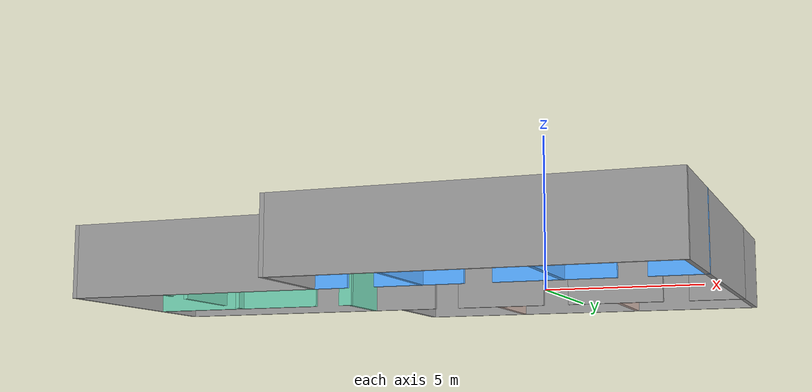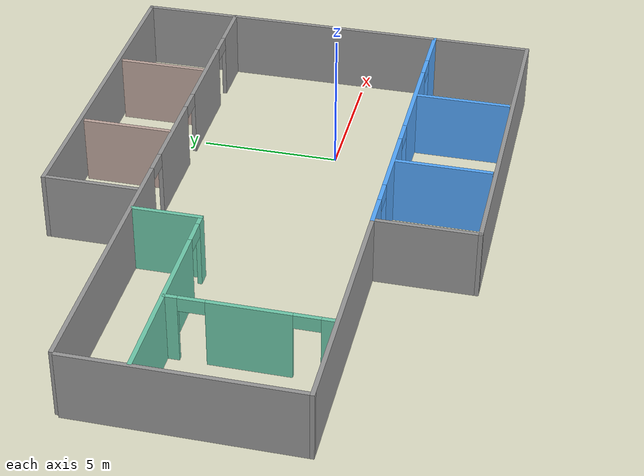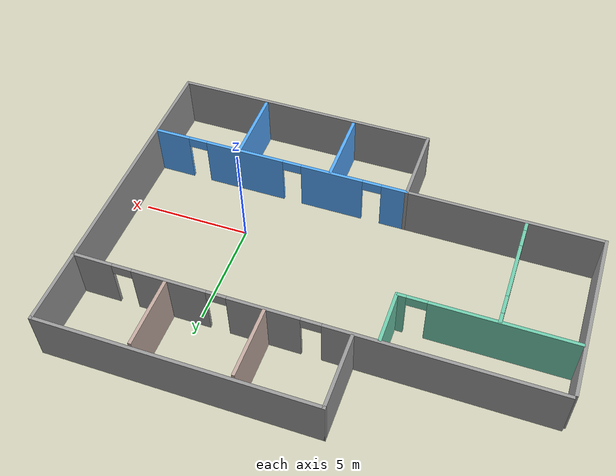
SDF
<?xml version='1.0'?>
<sdf version='1.6'>
  <model name='Building'>
    <pose frame=''>-5.09713 1.21876 0 0 -0 0</pose>
    <link name='Wall_0'>
      <pose frame=''>0.05 4.06916 0 0 -0 0</pose>
      <visual name='Wall_0_Visual_0'>
        <pose frame=''>-5.59523 0 1.25 0 -0 0</pose>
        <geometry>
          <box>
            <size>10.0595 0.15 2.5</size>
          </box>
        </geometry>
        <material>
          <script>
            <uri>file://media/materials/scripts/gazebo.material</uri>
            <name>Gazebo/Grey</name>
          </script>
          <ambient>1 1 1 1</ambient>
        </material>
        <meta>
          <layer>0</layer>
        </meta>
      </visual>
      <collision name='Wall_0_Collision_0'>
        <geometry>
          <box>
            <size>10.0595 0.15 2.5</size>
          </box>
        </geometry>
        <pose frame=''>-5.59523 0 1.25 0 -0 0</pose>
      </collision>
      <visual name='Wall_0_Visual_1'>
        <pose frame=''>1.94439 0 1.25 0 -0 0</pose>
        <geometry>
          <box>
            <size>3.21969 0.15 2.5</size>
          </box>
        </geometry>
        <material>
          <script>
            <uri>file://media/materials/scripts/gazebo.material</uri>
            <name>Gazebo/Grey</name>
          </script>
          <ambient>1 1 1 1</ambient>
        </material>
        <meta>
          <layer>0</layer>
        </meta>
      </visual>
      <collision name='Wall_0_Collision_1'>
        <geometry>
          <box>
            <size>3.21969 0.15 2.5</size>
          </box>
        </geometry>
        <pose frame=''>1.94439 0 1.25 0 -0 0</pose>
      </collision>
      <visual name='Wall_0_Visual_2'>
        <pose frame=''>6.14433 0 1.25 0 -0 0</pose>
        <geometry>
          <box>
            <size>3.3802 0.15 2.5</size>
          </box>
        </geometry>
        <material>
          <script>
            <uri>file://media/materials/scripts/gazebo.material</uri>
            <name>Gazebo/Grey</name>
          </script>
          <ambient>1 1 1 1</ambient>
        </material>
        <meta>
          <layer>0</layer>
        </meta>
      </visual>
      <collision name='Wall_0_Collision_2'>
        <geometry>
          <box>
            <size>3.3802 0.15 2.5</size>
          </box>
        </geometry>
        <pose frame=''>6.14433 0 1.25 0 -0 0</pose>
      </collision>
      <visual name='Wall_0_Visual_3'>
        <pose frame=''>9.67972 0 1.25 0 -0 0</pose>
        <geometry>
          <box>
            <size>1.89057 0.15 2.5</size>
          </box>
        </geometry>
        <material>
          <script>
            <uri>file://media/materials/scripts/gazebo.material</uri>
            <name>Gazebo/Grey</name>
          </script>
          <ambient>1 1 1 1</ambient>
        </material>
        <meta>
          <layer>0</layer>
        </meta>
      </visual>
      <collision name='Wall_0_Collision_3'>
        <geometry>
          <box>
            <size>1.89057 0.15 2.5</size>
          </box>
        </geometry>
        <pose frame=''>9.67972 0 1.25 0 -0 0</pose>
      </collision>
      <visual name='Wall_0_Visual_4'>
        <pose frame=''>-0.11546 0 2.25 0 -0 0</pose>
        <geometry>
          <box>
            <size>0.9 0.15 0.5</size>
          </box>
        </geometry>
        <material>
          <script>
            <uri>file://media/materials/scripts/gazebo.material</uri>
            <name>Gazebo/Grey</name>
          </script>
          <ambient>1 1 1 1</ambient>
        </material>
        <meta>
          <layer>0</layer>
        </meta>
      </visual>
      <collision name='Wall_0_Collision_4'>
        <geometry>
          <box>
            <size>0.9 0.15 0.5</size>
          </box>
        </geometry>
        <pose frame=''>-0.11546 0 2.25 0 -0 0</pose>
      </collision>
      <visual name='Wall_0_Visual_5'>
        <pose frame=''>4.00423 0 2.25 0 -0 0</pose>
        <geometry>
          <box>
            <size>0.9 0.15 0.5</size>
          </box>
        </geometry>
        <material>
          <script>
            <uri>file://media/materials/scripts/gazebo.material</uri>
            <name>Gazebo/Grey</name>
          </script>
          <ambient>1 1 1 1</ambient>
        </material>
        <meta>
          <layer>0</layer>
        </meta>
      </visual>
      <collision name='Wall_0_Collision_5'>
        <geometry>
          <box>
            <size>0.9 0.15 0.5</size>
          </box>
        </geometry>
        <pose frame=''>4.00423 0 2.25 0 -0 0</pose>
      </collision>
      <visual name='Wall_0_Visual_6'>
        <pose frame=''>8.28443 0 2.25 0 -0 0</pose>
        <geometry>
          <box>
            <size>0.9 0.15 0.5</size>
          </box>
        </geometry>
        <material>
          <script>
            <uri>file://media/materials/scripts/gazebo.material</uri>
            <name>Gazebo/Grey</name>
          </script>
          <ambient>1 1 1 1</ambient>
        </material>
        <meta>
          <layer>0</layer>
        </meta>
      </visual>
      <collision name='Wall_0_Collision_6'>
        <geometry>
          <box>
            <size>0.9 0.15 0.5</size>
          </box>
        </geometry>
        <pose frame=''>8.28443 0 2.25 0 -0 0</pose>
      </collision>
    </link>
    <link name='Wall_1'>
      <collision name='Wall_1_Collision'>
        <geometry>
          <box>
            <size>11.75 0.15 2.5</size>
          </box>
        </geometry>
        <pose frame=''>0 0 1.25 0 -0 0</pose>
      </collision>
      <visual name='Wall_1_Visual'>
        <pose frame=''>0 0 1.25 0 -0 0</pose>
        <geometry>
          <box>
            <size>11.75 0.15 2.5</size>
          </box>
        </geometry>
        <material>
          <script>
            <uri>file://media/materials/scripts/gazebo.material</uri>
            <name>Gazebo/Grey</name>
          </script>
          <ambient>1 1 1 1</ambient>
        </material>
        <meta>
          <layer>0</layer>
        </meta>
      </visual>
      <pose frame=''>10.6 -1.73084 0 0 0 -1.5708</pose>
    </link>
    <link name='Wall_11'>
      <collision name='Wall_11_Collision'>
        <geometry>
          <box>
            <size>3.5 0.15 2.5</size>
          </box>
        </geometry>
        <pose frame=''>0 0 1.25 0 -0 0</pose>
      </collision>
      <visual name='Wall_11_Visual'>
        <pose frame=''>0 0 1.25 0 -0 0</pose>
        <geometry>
          <box>
            <size>3.5 0.15 2.5</size>
          </box>
        </geometry>
        <material>
          <script>
            <uri>file://media/materials/scripts/gazebo.material</uri>
            <name>Gazebo/Grey</name>
          </script>
          <ambient>0.333333 0.666667 1 1</ambient>
        </material>
        <meta>
          <layer>0</layer>
        </meta>
      </visual>
      <pose frame=''>6.35522 -5.68166 0 0 0 -1.5708</pose>
    </link>
    <link name='Wall_13'>
      <collision name='Wall_13_Collision'>
        <geometry>
          <box>
            <size>3.5 0.15 2.5</size>
          </box>
        </geometry>
        <pose frame=''>0 0 1.25 0 -0 0</pose>
      </collision>
      <visual name='Wall_13_Visual'>
        <pose frame=''>0 0 1.25 0 -0 0</pose>
        <geometry>
          <box>
            <size>3.5 0.15 2.5</size>
          </box>
        </geometry>
        <material>
          <script>
            <uri>file://media/materials/scripts/gazebo.material</uri>
            <name>Gazebo/Grey</name>
          </script>
          <ambient>1 1 1 1</ambient>
        </material>
        <meta>
          <layer>0</layer>
        </meta>
      </visual>
      <pose frame=''>-1.8205 5.85585 0 0 -0 1.5708</pose>
    </link>
    <link name='Wall_14'>
      <collision name='Wall_14_Collision'>
        <geometry>
          <box>
            <size>12.5612 0.15 2.5</size>
          </box>
        </geometry>
        <pose frame=''>0 0 1.25 0 -0 0</pose>
      </collision>
      <visual name='Wall_14_Visual'>
        <pose frame=''>0 0 1.25 0 -0 0</pose>
        <geometry>
          <box>
            <size>12.5612 0.15 2.5</size>
          </box>
        </geometry>
        <material>
          <script>
            <uri>file://media/materials/scripts/gazebo.material</uri>
            <name>Gazebo/Grey</name>
          </script>
          <ambient>1 1 1 1</ambient>
        </material>
        <meta>
          <layer>0</layer>
        </meta>
      </visual>
      <pose frame=''>4.38509 7.53085 0 0 -0 0</pose>
    </link>
    <link name='Wall_15'>
      <collision name='Wall_15_Collision'>
        <geometry>
          <box>
            <size>3.5 0.15 2.5</size>
          </box>
        </geometry>
        <pose frame=''>0 0 1.25 0 -0 0</pose>
      </collision>
      <visual name='Wall_15_Visual'>
        <pose frame=''>0 0 1.25 0 -0 0</pose>
        <geometry>
          <box>
            <size>3.5 0.15 2.5</size>
          </box>
        </geometry>
        <material>
          <script>
            <uri>file://media/materials/scripts/gazebo.material</uri>
            <name>Gazebo/Grey</name>
          </script>
          <ambient>1 1 1 1</ambient>
        </material>
        <meta>
          <layer>0</layer>
        </meta>
      </visual>
      <pose frame=''>10.5907 5.82526 0 0 0 -1.5708</pose>
    </link>
    <link name='Wall_18'>
      <collision name='Wall_18_Collision'>
        <geometry>
          <box>
            <size>3.25 0.15 2.5</size>
          </box>
        </geometry>
        <pose frame=''>0 0 1.25 0 -0 0</pose>
      </collision>
      <visual name='Wall_18_Visual'>
        <pose frame=''>0 0 1.25 0 -0 0</pose>
        <geometry>
          <box>
            <size>3.25 0.15 2.5</size>
          </box>
        </geometry>
        <material>
          <script>
            <uri>file://media/materials/scripts/gazebo.material</uri>
            <name>Gazebo/Grey</name>
          </script>
          <ambient>0.760784 0.662745 0.627451 1</ambient>
        </material>
        <meta>
          <layer>0</layer>
        </meta>
      </visual>
      <pose frame=''>1.91413 5.73931 0 0 -0 1.5708</pose>
    </link>
    <link name='Wall_2'>
      <collision name='Wall_2_Collision'>
        <geometry>
          <box>
            <size>12.5 0.15 2.5</size>
          </box>
        </geometry>
        <pose frame=''>0 0 1.25 0 -0 0</pose>
      </collision>
      <visual name='Wall_2_Visual'>
        <pose frame=''>0 0 1.25 0 -0 0</pose>
        <geometry>
          <box>
            <size>12.5 0.15 2.5</size>
          </box>
        </geometry>
        <material>
          <script>
            <uri>file://media/materials/scripts/gazebo.material</uri>
            <name>Gazebo/Grey</name>
          </script>
          <ambient>1 1 1 1</ambient>
        </material>
        <meta>
          <layer>0</layer>
        </meta>
      </visual>
      <pose frame=''>4.425 -7.53085 0 0 -0 3.14159</pose>
    </link>
    <link name='Wall_20'>
      <collision name='Wall_20_Collision'>
        <geometry>
          <box>
            <size>3.25 0.15 2.5</size>
          </box>
        </geometry>
        <pose frame=''>0 0 1.25 0 -0 0</pose>
      </collision>
      <visual name='Wall_20_Visual'>
        <pose frame=''>0 0 1.25 0 -0 0</pose>
        <geometry>
          <box>
            <size>3.25 0.15 2.5</size>
          </box>
        </geometry>
        <material>
          <script>
            <uri>file://media/materials/scripts/gazebo.material</uri>
            <name>Gazebo/Grey</name>
          </script>
          <ambient>0.760784 0.662745 0.627451 1</ambient>
        </material>
        <meta>
          <layer>0</layer>
        </meta>
      </visual>
      <pose frame=''>6.30134 5.73931 0 0 -0 1.5708</pose>
    </link>
    <link name='Wall_22'>
      <collision name='Wall_22_Collision'>
        <geometry>
          <box>
            <size>2.5 0.15 2.5</size>
          </box>
        </geometry>
        <pose frame=''>0 0 1.25 0 -0 0</pose>
      </collision>
      <visual name='Wall_22_Visual'>
        <pose frame=''>0 0 1.25 0 -0 0</pose>
        <geometry>
          <box>
            <size>2.5 0.15 2.5</size>
          </box>
        </geometry>
        <material>
          <script>
            <uri>file://media/materials/scripts/gazebo.material</uri>
            <name>Gazebo/Grey</name>
          </script>
          <ambient>0.435294 0.796078 0.67451 1</ambient>
        </material>
        <meta>
          <layer>0</layer>
        </meta>
      </visual>
      <pose frame=''>-2.90109 2.8003 0 0 0 -1.5708</pose>
    </link>
    <link name='Wall_23'>
      <pose frame=''>-6.70109 1.6253 0 0 -0 3.14159</pose>
      <visual name='Wall_23_Visual_0'>
        <pose frame=''>-3.63448 0 1.25 0 -0 0</pose>
        <geometry>
          <box>
            <size>0.48104 0.15 2.5</size>
          </box>
        </geometry>
        <material>
          <script>
            <uri>file://media/materials/scripts/gazebo.material</uri>
            <name>Gazebo/Grey</name>
          </script>
          <ambient>0.435294 0.796078 0.67451 1</ambient>
        </material>
        <meta>
          <layer>0</layer>
        </meta>
      </visual>
      <collision name='Wall_23_Collision_0'>
        <geometry>
          <box>
            <size>0.48104 0.15 2.5</size>
          </box>
        </geometry>
        <pose frame=''>-3.63448 0 1.25 0 -0 0</pose>
      </collision>
      <visual name='Wall_23_Visual_1'>
        <pose frame=''>0.69052 0 1.25 0 -0 0</pose>
        <geometry>
          <box>
            <size>6.36896 0.15 2.5</size>
          </box>
        </geometry>
        <material>
          <script>
            <uri>file://media/materials/scripts/gazebo.material</uri>
            <name>Gazebo/Grey</name>
          </script>
          <ambient>0.435294 0.796078 0.67451 1</ambient>
        </material>
        <meta>
          <layer>0</layer>
        </meta>
      </visual>
      <collision name='Wall_23_Collision_1'>
        <geometry>
          <box>
            <size>6.36896 0.15 2.5</size>
          </box>
        </geometry>
        <pose frame=''>0.69052 0 1.25 0 -0 0</pose>
      </collision>
      <visual name='Wall_23_Visual_2'>
        <pose frame=''>-2.94396 0 2.25 0 -0 0</pose>
        <geometry>
          <box>
            <size>0.9 0.15 0.5</size>
          </box>
        </geometry>
        <material>
          <script>
            <uri>file://media/materials/scripts/gazebo.material</uri>
            <name>Gazebo/Grey</name>
          </script>
          <ambient>0.435294 0.796078 0.67451 1</ambient>
        </material>
        <meta>
          <layer>0</layer>
        </meta>
      </visual>
      <collision name='Wall_23_Collision_2'>
        <geometry>
          <box>
            <size>0.9 0.15 0.5</size>
          </box>
        </geometry>
        <pose frame=''>-2.94396 0 2.25 0 -0 0</pose>
      </collision>
    </link>
    <link name='Wall_25'>
      <pose frame=''>-7.18129 -1.10732 0 0 0 -1.5708</pose>
      <visual name='Wall_25_Visual_0'>
        <pose frame=''>-2.50948 0 1.25 0 -0 0</pose>
        <geometry>
          <box>
            <size>0.48104 0.15 2.5</size>
          </box>
        </geometry>
        <material>
          <script>
            <uri>file://media/materials/scripts/gazebo.material</uri>
            <name>Gazebo/Grey</name>
          </script>
          <ambient>0.435294 0.796078 0.67451 1</ambient>
        </material>
        <meta>
          <layer>0</layer>
        </meta>
      </visual>
      <collision name='Wall_25_Collision_0'>
        <geometry>
          <box>
            <size>0.48104 0.15 2.5</size>
          </box>
        </geometry>
        <pose frame=''>-2.50948 0 1.25 0 -0 0</pose>
      </collision>
      <visual name='Wall_25_Visual_1'>
        <pose frame=''>0.026876 0 1.25 0 -0 0</pose>
        <geometry>
          <box>
            <size>2.79167 0.15 2.5</size>
          </box>
        </geometry>
        <material>
          <script>
            <uri>file://media/materials/scripts/gazebo.material</uri>
            <name>Gazebo/Grey</name>
          </script>
          <ambient>0.435294 0.796078 0.67451 1</ambient>
        </material>
        <meta>
          <layer>0</layer>
        </meta>
      </visual>
      <collision name='Wall_25_Collision_1'>
        <geometry>
          <box>
            <size>2.79167 0.15 2.5</size>
          </box>
        </geometry>
        <pose frame=''>0.026876 0 1.25 0 -0 0</pose>
      </collision>
      <visual name='Wall_25_Visual_2'>
        <pose frame=''>2.53636 0 1.25 0 -0 0</pose>
        <geometry>
          <box>
            <size>0.427287 0.15 2.5</size>
          </box>
        </geometry>
        <material>
          <script>
            <uri>file://media/materials/scripts/gazebo.material</uri>
            <name>Gazebo/Grey</name>
          </script>
          <ambient>0.435294 0.796078 0.67451 1</ambient>
        </material>
        <meta>
          <layer>0</layer>
        </meta>
      </visual>
      <collision name='Wall_25_Collision_2'>
        <geometry>
          <box>
            <size>0.427287 0.15 2.5</size>
          </box>
        </geometry>
        <pose frame=''>2.53636 0 1.25 0 -0 0</pose>
      </collision>
      <visual name='Wall_25_Visual_3'>
        <pose frame=''>-1.81896 0 2.25 0 -0 0</pose>
        <geometry>
          <box>
            <size>0.9 0.15 0.5</size>
          </box>
        </geometry>
        <material>
          <script>
            <uri>file://media/materials/scripts/gazebo.material</uri>
            <name>Gazebo/Grey</name>
          </script>
          <ambient>0.435294 0.796078 0.67451 1</ambient>
        </material>
        <meta>
          <layer>0</layer>
        </meta>
      </visual>
      <collision name='Wall_25_Collision_3'>
        <geometry>
          <box>
            <size>0.9 0.15 0.5</size>
          </box>
        </geometry>
        <pose frame=''>-1.81896 0 2.25 0 -0 0</pose>
      </collision>
      <visual name='Wall_25_Visual_4'>
        <pose frame=''>1.87271 0 2.25 0 -0 0</pose>
        <geometry>
          <box>
            <size>0.9 0.15 0.5</size>
          </box>
        </geometry>
        <material>
          <script>
            <uri>file://media/materials/scripts/gazebo.material</uri>
            <name>Gazebo/Grey</name>
          </script>
          <ambient>0.435294 0.796078 0.67451 1</ambient>
        </material>
        <meta>
          <layer>0</layer>
        </meta>
      </visual>
      <collision name='Wall_25_Collision_4'>
        <geometry>
          <box>
            <size>0.9 0.15 0.5</size>
          </box>
        </geometry>
        <pose frame=''>1.87271 0 2.25 0 -0 0</pose>
      </collision>
    </link>
    <link name='Wall_3'>
      <collision name='Wall_3_Collision'>
        <geometry>
          <box>
            <size>3.75 0.15 2.5</size>
          </box>
        </geometry>
        <pose frame=''>0 0 1.25 0 -0 0</pose>
      </collision>
      <visual name='Wall_3_Visual'>
        <pose frame=''>0 0 1.25 0 -0 0</pose>
        <geometry>
          <box>
            <size>3.75 0.15 2.5</size>
          </box>
        </geometry>
        <material>
          <script>
            <uri>file://media/materials/scripts/gazebo.material</uri>
            <name>Gazebo/Grey</name>
          </script>
          <ambient>1 1 1 1</ambient>
        </material>
        <meta>
          <layer>0</layer>
        </meta>
      </visual>
      <pose frame=''>-1.75 -5.73084 0 0 -0 1.5708</pose>
    </link>
    <link name='Wall_4'>
      <collision name='Wall_4_Collision'>
        <geometry>
          <box>
            <size>9 0.15 2.5</size>
          </box>
        </geometry>
        <pose frame=''>0 0 1.25 0 -0 0</pose>
      </collision>
      <visual name='Wall_4_Visual'>
        <pose frame=''>0 0 1.25 0 -0 0</pose>
        <geometry>
          <box>
            <size>9 0.15 2.5</size>
          </box>
        </geometry>
        <material>
          <script>
            <uri>file://media/materials/scripts/gazebo.material</uri>
            <name>Gazebo/Grey</name>
          </script>
          <ambient>1 1 1 1</ambient>
        </material>
        <meta>
          <layer>0</layer>
        </meta>
      </visual>
      <pose frame=''>-6.175 -3.93085 0 0 -0 3.14159</pose>
    </link>
    <link name='Wall_5'>
      <collision name='Wall_5_Collision'>
        <geometry>
          <box>
            <size>8 0.15 2.5</size>
          </box>
        </geometry>
        <pose frame=''>0 0 1.25 0 -0 0</pose>
      </collision>
      <visual name='Wall_5_Visual'>
        <pose frame=''>0 0 1.25 0 -0 0</pose>
        <geometry>
          <box>
            <size>8 0.15 2.5</size>
          </box>
        </geometry>
        <material>
          <script>
            <uri>file://media/materials/scripts/gazebo.material</uri>
            <name>Gazebo/Grey</name>
          </script>
          <ambient>1 1 1 1</ambient>
        </material>
        <meta>
          <layer>0</layer>
        </meta>
      </visual>
      <pose frame=''>-10.6 -0.005845 0 0 -0 1.5708</pose>
    </link>
    <link name='Wall_7'>
      <pose frame=''>4.425 -3.93085 0 0 -0 0</pose>
      <visual name='Wall_7_Visual_0'>
        <pose frame=''>-5.62198 0 1.25 0 -0 0</pose>
        <geometry>
          <box>
            <size>1.25604 0.15 2.5</size>
          </box>
        </geometry>
        <material>
          <script>
            <uri>file://media/materials/scripts/gazebo.material</uri>
            <name>Gazebo/Grey</name>
          </script>
          <ambient>0.333333 0.666667 1 1</ambient>
        </material>
        <meta>
          <layer>0</layer>
        </meta>
      </visual>
      <collision name='Wall_7_Collision_0'>
        <geometry>
          <box>
            <size>1.25604 0.15 2.5</size>
          </box>
        </geometry>
        <pose frame=''>-5.62198 0 1.25 0 -0 0</pose>
      </collision>
      <visual name='Wall_7_Visual_1'>
        <pose frame=''>-2.61787 0 1.25 0 -0 0</pose>
        <geometry>
          <box>
            <size>2.95218 0.15 2.5</size>
          </box>
        </geometry>
        <material>
          <script>
            <uri>file://media/materials/scripts/gazebo.material</uri>
            <name>Gazebo/Grey</name>
          </script>
          <ambient>0.333333 0.666667 1 1</ambient>
        </material>
        <meta>
          <layer>0</layer>
        </meta>
      </visual>
      <collision name='Wall_7_Collision_1'>
        <geometry>
          <box>
            <size>2.95218 0.15 2.5</size>
          </box>
        </geometry>
        <pose frame=''>-2.61787 0 1.25 0 -0 0</pose>
      </collision>
      <visual name='Wall_7_Visual_2'>
        <pose frame=''>1.66233 0 1.25 0 -0 0</pose>
        <geometry>
          <box>
            <size>3.80822 0.15 2.5</size>
          </box>
        </geometry>
        <material>
          <script>
            <uri>file://media/materials/scripts/gazebo.material</uri>
            <name>Gazebo/Grey</name>
          </script>
          <ambient>0.333333 0.666667 1 1</ambient>
        </material>
        <meta>
          <layer>0</layer>
        </meta>
      </visual>
      <collision name='Wall_7_Collision_2'>
        <geometry>
          <box>
            <size>3.80822 0.15 2.5</size>
          </box>
        </geometry>
        <pose frame=''>1.66233 0 1.25 0 -0 0</pose>
      </collision>
      <visual name='Wall_7_Visual_3'>
        <pose frame=''>5.35822 0 1.25 0 -0 0</pose>
        <geometry>
          <box>
            <size>1.78356 0.15 2.5</size>
          </box>
        </geometry>
        <material>
          <script>
            <uri>file://media/materials/scripts/gazebo.material</uri>
            <name>Gazebo/Grey</name>
          </script>
          <ambient>0.333333 0.666667 1 1</ambient>
        </material>
        <meta>
          <layer>0</layer>
        </meta>
      </visual>
      <collision name='Wall_7_Collision_3'>
        <geometry>
          <box>
            <size>1.78356 0.15 2.5</size>
          </box>
        </geometry>
        <pose frame=''>5.35822 0 1.25 0 -0 0</pose>
      </collision>
      <visual name='Wall_7_Visual_4'>
        <pose frame=''>-4.54396 0 2.25 0 -0 0</pose>
        <geometry>
          <box>
            <size>0.9 0.15 0.5</size>
          </box>
        </geometry>
        <material>
          <script>
            <uri>file://media/materials/scripts/gazebo.material</uri>
            <name>Gazebo/Grey</name>
          </script>
          <ambient>0.333333 0.666667 1 1</ambient>
        </material>
        <meta>
          <layer>0</layer>
        </meta>
      </visual>
      <collision name='Wall_7_Collision_4'>
        <geometry>
          <box>
            <size>0.9 0.15 0.5</size>
          </box>
        </geometry>
        <pose frame=''>-4.54396 0 2.25 0 -0 0</pose>
      </collision>
      <visual name='Wall_7_Visual_5'>
        <pose frame=''>-0.691783 0 2.25 0 -0 0</pose>
        <geometry>
          <box>
            <size>0.9 0.15 0.5</size>
          </box>
        </geometry>
        <material>
          <script>
            <uri>file://media/materials/scripts/gazebo.material</uri>
            <name>Gazebo/Grey</name>
          </script>
          <ambient>0.333333 0.666667 1 1</ambient>
        </material>
        <meta>
          <layer>0</layer>
        </meta>
      </visual>
      <collision name='Wall_7_Collision_5'>
        <geometry>
          <box>
            <size>0.9 0.15 0.5</size>
          </box>
        </geometry>
        <pose frame=''>-0.691783 0 2.25 0 -0 0</pose>
      </collision>
      <visual name='Wall_7_Visual_6'>
        <pose frame=''>4.01644 0 2.25 0 -0 0</pose>
        <geometry>
          <box>
            <size>0.9 0.15 0.5</size>
          </box>
        </geometry>
        <material>
          <script>
            <uri>file://media/materials/scripts/gazebo.material</uri>
            <name>Gazebo/Grey</name>
          </script>
          <ambient>0.333333 0.666667 1 1</ambient>
        </material>
        <meta>
          <layer>0</layer>
        </meta>
      </visual>
      <collision name='Wall_7_Collision_6'>
        <geometry>
          <box>
            <size>0.9 0.15 0.5</size>
          </box>
        </geometry>
        <pose frame=''>4.01644 0 2.25 0 -0 0</pose>
      </collision>
    </link>
    <link name='Wall_9'>
      <collision name='Wall_9_Collision'>
        <geometry>
          <box>
            <size>3.5 0.15 2.5</size>
          </box>
        </geometry>
        <pose frame=''>0 0 1.25 0 -0 0</pose>
      </collision>
      <visual name='Wall_9_Visual'>
        <pose frame=''>0 0 1.25 0 -0 0</pose>
        <geometry>
          <box>
            <size>3.5 0.15 2.5</size>
          </box>
        </geometry>
        <material>
          <script>
            <uri>file://media/materials/scripts/gazebo.material</uri>
            <name>Gazebo/Grey</name>
          </script>
          <ambient>0.333333 0.666667 1 1</ambient>
        </material>
        <meta>
          <layer>0</layer>
        </meta>
      </visual>
      <pose frame=''>1.88904 -5.68166 0 0 0 -1.5708</pose>
    </link>
    <static>1</static>
  </model>
</sdf>
